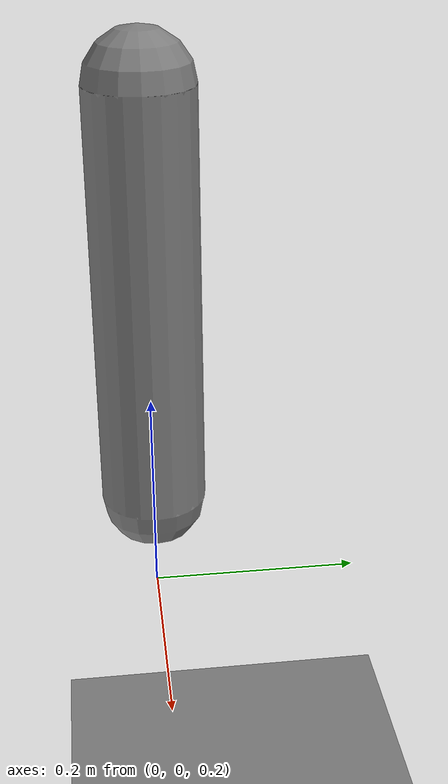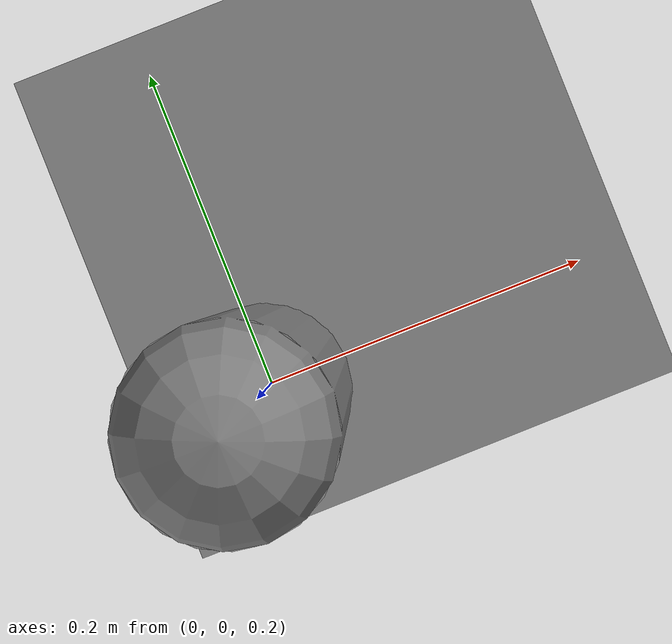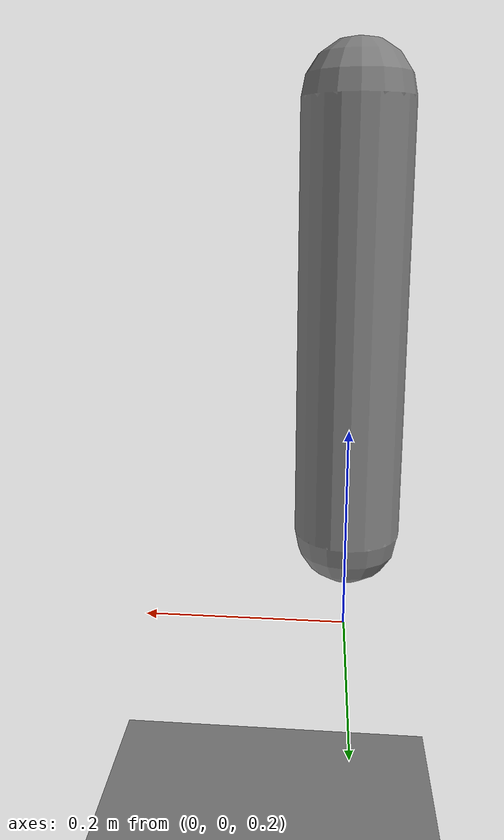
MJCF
<mujoco model="no_collision">
  <worldbody>
    <geom name="floor" type="plane" size="5 5 0.1"/>
    <body name="arm" pos="0 0 0.5">
      <joint name="j1" type="hinge" axis="0 1 0"/>
      <geom name="arm_geom" type="capsule" size="0.05 0.2" mass="1.0" contype="0" conaffinity="0"/>
    </body>
  </worldbody>
</mujoco>
